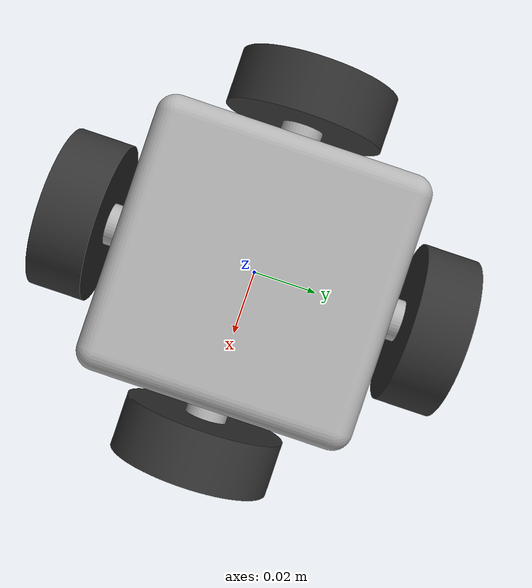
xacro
<?xml version="1.0" ?>
<robot xmlns:xacro="http://www.ros.org/wiki/xacro" name="minibot_game">

<!-- ── Xacro arguments ──────────────────────────────────────────── -->
<xacro:arg name="robot_name" default="minibot"/>
<xacro:arg name="body_r"     default="0.7"/>
<xacro:arg name="body_g"     default="0.7"/>
<xacro:arg name="body_b"     default="0.7"/>

<xacro:property name="robot_name" value="$(arg robot_name)"/>
<xacro:property name="body_r"     value="$(arg body_r)"/>
<xacro:property name="body_g"     value="$(arg body_g)"/>
<xacro:property name="body_b"     value="$(arg body_b)"/>

<!-- ── Materials ─────────────────────────────────────────────────── -->
<material name="bot_color">
  <color rgba="${body_r} ${body_g} ${body_b} 1.0"/>
</material>

<material name="wheel_dark">
  <color rgba="0.2 0.2 0.2 1.0"/>
</material>

<!-- ── base_footprint (ground-level frame) ───────────────────────── -->
<link name="base_footprint"/>
<joint name="base_footprint_joint" type="fixed">
  <origin xyz="0 0 0" rpy="0 0 0"/>
  <parent link="base_footprint"/>
  <child link="base_link"/>
</joint>

<!-- ── base_link (chassis) ──────────────────────────────────────── -->
<link name="base_link">
  <inertial>
    <origin xyz="0 0 0.033" rpy="0 0 0"/>
    <mass value="0.262"/>
    <inertia ixx="0.000205" iyy="0.000205" izz="0.000214"
             ixy="0" iyz="0" ixz="0"/>
  </inertial>
  <visual>
    <origin xyz="0 0 0" rpy="0 0 0"/>
    <geometry>
      <mesh filename="package://minibot/meshes/base_link.stl" scale="0.001 0.001 0.001"/>
    </geometry>
    <material name="bot_color"/>
  </visual>
  <collision>
    <origin xyz="0 0 0.025" rpy="0 0 0"/>
    <geometry>
      <cylinder radius="0.045" length="0.05"/>
    </geometry>
  </collision>
</link>

<!-- ── WHEELS (visual only — planar move handles motion) ─────────── -->
<link name="wheel_front_1">
  <inertial>
    <origin xyz="0 0.008 0" rpy="0 0 0"/>
    <mass value="0.044"/>
    <inertia ixx="6.97e-06" iyy="1.255e-05" izz="6.97e-06"
             ixy="0" iyz="0" ixz="0"/>
  </inertial>
  <visual>
    <origin xyz="0 -0.045 -0.015" rpy="0 0 0"/>
    <geometry>
      <mesh filename="package://minibot/meshes/wheel_front_1.stl" scale="0.001 0.001 0.001"/>
    </geometry>
    <material name="wheel_dark"/>
  </visual>
  <collision>
    <origin xyz="0 0 0" rpy="1.5708 0 0"/>
    <geometry>
      <cylinder radius="0.024" length="0.014"/>
    </geometry>
  </collision>
</link>

<link name="wheel_right_1">
  <inertial>
    <origin xyz="0.008 0 0" rpy="0 0 0"/>
    <mass value="0.044"/>
    <inertia ixx="1.255e-05" iyy="6.97e-06" izz="6.97e-06"
             ixy="0" iyz="0" ixz="0"/>
  </inertial>
  <visual>
    <origin xyz="-0.045 0 -0.015" rpy="0 0 0"/>
    <geometry>
      <mesh filename="package://minibot/meshes/wheel_right_1.stl" scale="0.001 0.001 0.001"/>
    </geometry>
    <material name="wheel_dark"/>
  </visual>
  <collision>
    <origin xyz="0 0 0" rpy="0 1.5708 0"/>
    <geometry>
      <cylinder radius="0.024" length="0.014"/>
    </geometry>
  </collision>
</link>

<link name="wheel_back_1">
  <inertial>
    <origin xyz="0 -0.008 0" rpy="0 0 0"/>
    <mass value="0.044"/>
    <inertia ixx="6.97e-06" iyy="1.255e-05" izz="6.97e-06"
             ixy="0" iyz="0" ixz="0"/>
  </inertial>
  <visual>
    <origin xyz="0 0.045 -0.015" rpy="0 0 0"/>
    <geometry>
      <mesh filename="package://minibot/meshes/wheel_back_1.stl" scale="0.001 0.001 0.001"/>
    </geometry>
    <material name="wheel_dark"/>
  </visual>
  <collision>
    <origin xyz="0 0 0" rpy="1.5708 0 0"/>
    <geometry>
      <cylinder radius="0.024" length="0.014"/>
    </geometry>
  </collision>
</link>

<link name="wheel_left_1">
  <inertial>
    <origin xyz="-0.008 0 0" rpy="0 0 0"/>
    <mass value="0.044"/>
    <inertia ixx="1.255e-05" iyy="6.97e-06" izz="6.97e-06"
             ixy="0" iyz="0" ixz="0"/>
  </inertial>
  <visual>
    <origin xyz="0.045 0 -0.015" rpy="0 0 0"/>
    <geometry>
      <mesh filename="package://minibot/meshes/wheel_left_1.stl" scale="0.001 0.001 0.001"/>
    </geometry>
    <material name="wheel_dark"/>
  </visual>
  <collision>
    <origin xyz="0 0 0" rpy="0 1.5708 0"/>
    <geometry>
      <cylinder radius="0.024" length="0.014"/>
    </geometry>
  </collision>
</link>

<!-- ── Wheel joints ─────────────────────────────────────────────── -->
<joint name="wheel_front_joint" type="continuous">
  <origin xyz="0 0.045 0.015" rpy="0 0 0"/>
  <parent link="base_link"/>
  <child link="wheel_front_1"/>
  <axis xyz="0 1 0"/>
  <limit effort="0.05" velocity="31.416"/>
  <dynamics damping="0.001" friction="0.01"/>
</joint>

<joint name="wheel_right_joint" type="continuous">
  <origin xyz="0.045 0 0.015" rpy="0 0 0"/>
  <parent link="base_link"/>
  <child link="wheel_right_1"/>
  <axis xyz="1 0 0"/>
  <limit effort="0.05" velocity="31.416"/>
  <dynamics damping="0.001" friction="0.01"/>
</joint>

<joint name="wheel_back_joint" type="continuous">
  <origin xyz="0 -0.045 0.015" rpy="0 0 0"/>
  <parent link="base_link"/>
  <child link="wheel_back_1"/>
  <axis xyz="0 -1 0"/>
  <limit effort="0.05" velocity="31.416"/>
  <dynamics damping="0.001" friction="0.01"/>
</joint>

<joint name="wheel_left_joint" type="continuous">
  <origin xyz="-0.045 0 0.015" rpy="0 0 0"/>
  <parent link="base_link"/>
  <child link="wheel_left_1"/>
  <axis xyz="-1 0 0"/>
  <limit effort="0.05" velocity="31.416"/>
  <dynamics damping="0.001" friction="0.01"/>
</joint>

<!-- ── Gazebo properties ────────────────────────────────────────── -->
<gazebo reference="base_link">
  <mu1>0.4</mu1>
  <mu2>0.4</mu2>
  <selfCollide>false</selfCollide>
  <gravity>true</gravity>
  <material>Gazebo/Grey</material>
  <visual>
    <material>
      <ambient>${body_r} ${body_g} ${body_b} 1</ambient>
      <diffuse>${body_r} ${body_g} ${body_b} 1</diffuse>
      <specular>0.3 0.3 0.3 1</specular>
    </material>
  </visual>
</gazebo>

<gazebo reference="wheel_front_1">
  <mu1>1.0</mu1>  <mu2>0.0</mu2>
  <fdir1>1 0 0</fdir1>
  <kp>1000000.0</kp>  <kd>1.0</kd>
  <selfCollide>false</selfCollide>
</gazebo>
<gazebo reference="wheel_right_1">
  <mu1>1.0</mu1>  <mu2>0.0</mu2>
  <fdir1>0 1 0</fdir1>
  <kp>1000000.0</kp>  <kd>1.0</kd>
  <selfCollide>false</selfCollide>
</gazebo>
<gazebo reference="wheel_back_1">
  <mu1>1.0</mu1>  <mu2>0.0</mu2>
  <fdir1>1 0 0</fdir1>
  <kp>1000000.0</kp>  <kd>1.0</kd>
  <selfCollide>false</selfCollide>
</gazebo>
<gazebo reference="wheel_left_1">
  <mu1>1.0</mu1>  <mu2>0.0</mu2>
  <fdir1>0 1 0</fdir1>
  <kp>1000000.0</kp>  <kd>1.0</kd>
  <selfCollide>false</selfCollide>
</gazebo>

<!-- ── Planar move plugin (cmd_vel → motion) ────────────────────── -->
<gazebo>
  <plugin name="planar_move" filename="libgazebo_ros_planar_move.so">
    <ros>
      <namespace>/${robot_name}</namespace>
      <remapping>cmd_vel:=cmd_vel</remapping>
      <remapping>odom:=odom</remapping>
    </ros>
    <command_topic>cmd_vel</command_topic>
    <odometry_topic>odom</odometry_topic>
    <odometry_frame>odom</odometry_frame>
    <robot_base_frame>base_footprint</robot_base_frame>
    <odometry_rate>20.0</odometry_rate>
    <publish_odom>true</publish_odom>
    <publish_odom_tf>true</publish_odom_tf>
  </plugin>
</gazebo>

</robot>
